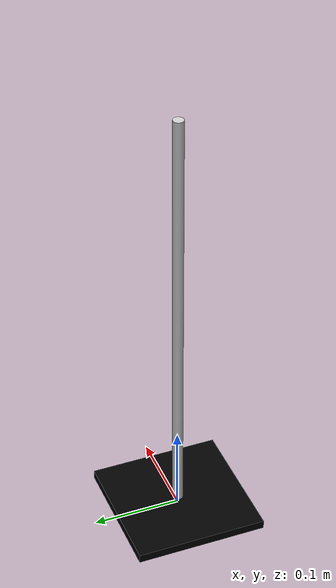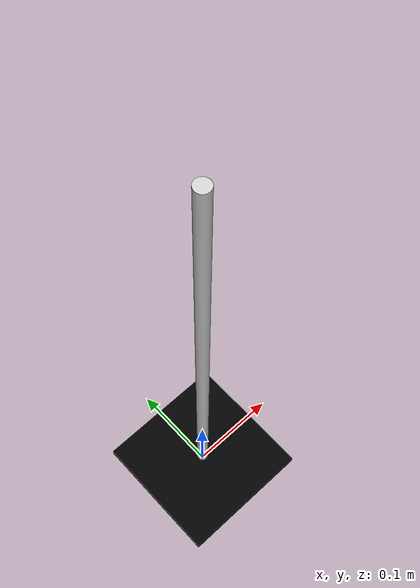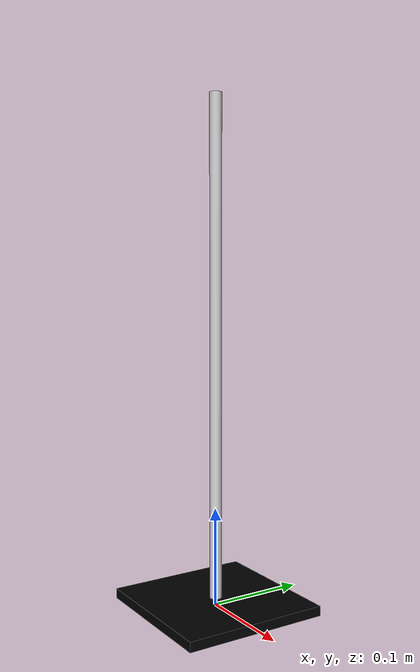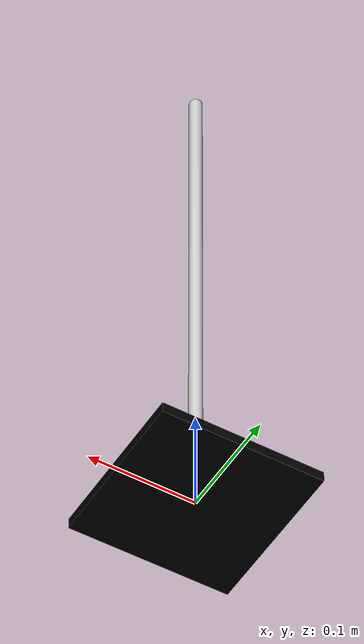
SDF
<?xml version="1.0" ?>
<sdf version="1.4">
  <model name="camera_support">
    <static>0</static>
    <link name="link">

      <inertial>
        <mass>0.5</mass>
        <inertia>
          <ixx>0.000015</ixx>
          <ixy>0.0</ixy>
          <ixz>0.0</ixz>
          <iyy>0.000015</iyy>
          <iyz>0.0</iyz>
          <izz>0.0000108</izz>
        </inertia>
      </inertial>

      <collision name="collision1">
        <pose>0 0 0.0 0 0 0</pose>
          <geometry>
            <box>
              <size>0.15 0.15 0.005</size>
            </box>
          </geometry>
      </collision>
      <collision name="collision2">
          <pose>0 0 0.255 0 0 0</pose>
          <geometry>
            <cylinder>
              <radius>0.012</radius>
              <length>0.5</length>
            </cylinder>
          </geometry>
      </collision>

      <visual name="visual">
        <pose>0 0 -0.002 0 0 0</pose>
        <geometry>
          <mesh>
             <uri>model://camera_support/meshes/camera_support.dae</uri>
    		  </mesh>
        </geometry>
      </visual>

      <velocity_decay>
        <linear>0.000000</linear>
        <angular>0.000000</angular>
      </velocity_decay>
      <self_collide>0</self_collide>
      <kinematic>0</kinematic>
      <gravity>1</gravity>
    </link>
  </model>
</sdf>
